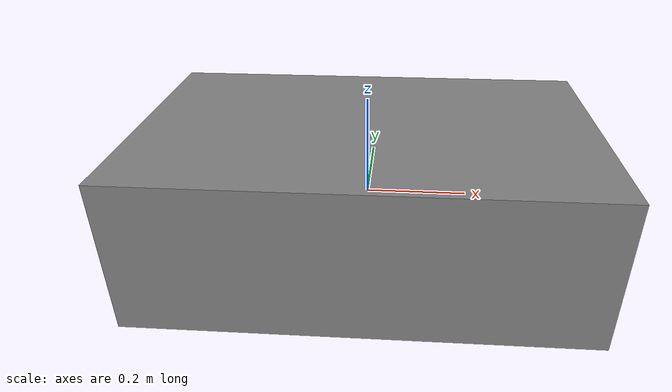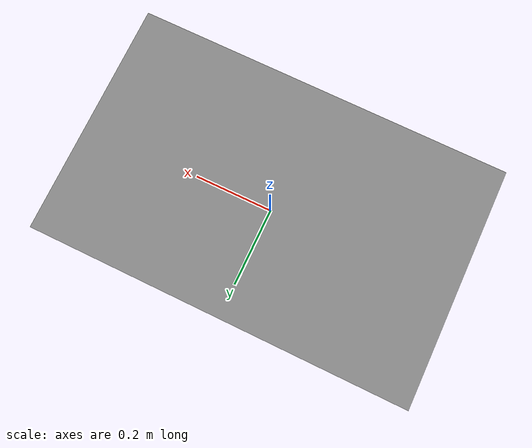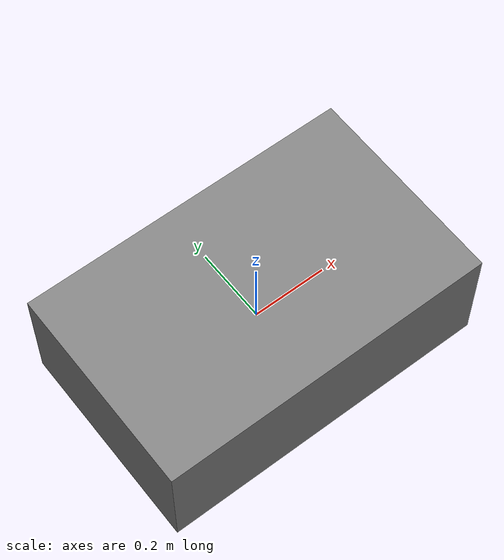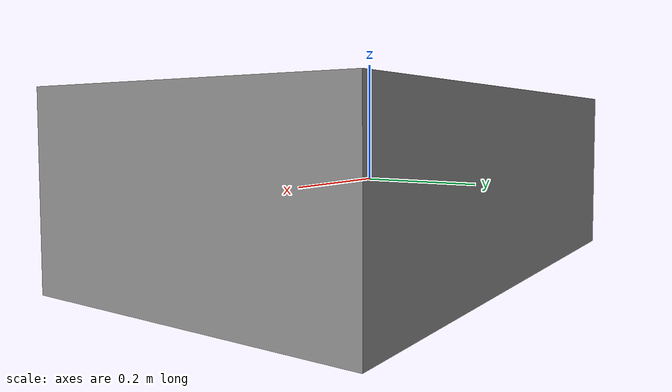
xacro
<?xml version="1.0"?>
<robot name="outdoor_robot" xmlns:xacro="http://www.ros.org/wiki/xacro">
<!-- WHEEL_BASE: TBD — measure after assembly and add wheel links -->
<!-- 6x wheel links needed: FL, FR, ML, MR, RL, RR -->
<!-- Rocker-bogie suspension means wheel z-positions vary with terrain -->

  <!-- Base dimensions — measure and update these -->
  <xacro:property name="base_length" value="0.8884"/>
  <xacro:property name="base_width" value="0.554"/>
  <xacro:property name="base_height" value="0.3"/>
  <xacro:property name="wheel_radius" value="0.05"/>
  <xacro:property name="wheel_width" value="0.04"/>

  <!-- Base link -->
  <link name="base_link">
    <visual>
      <geometry>
        <box size="${base_length} ${base_width} ${base_height}"/>
      </geometry>
      <material name="grey">
        <color rgba="0.5 0.5 0.5 1.0"/>
      </material>
    </visual>
    <collision>
      <geometry>
        <box size="${base_length} ${base_width} ${base_height}"/>
      </geometry>
    </collision>
    <inertial>
      <mass value="6.18"/>
      <inertia ixx="0.2044" ixy="0" ixz="0" iyy="0.4528" iyz="0" izz="0.5645"/>
    </inertial>
  </link>

  <!-- IMU link -->
  <link name="imu_link"/>
  <joint name="imu_joint" type="fixed">
    <parent link="base_link"/>
    <child link="imu_link"/>
    <origin xyz="0 0 0.05" rpy="0 0 0"/> <!--MEASURE: IMU POS ON CHASSIS-->
  </joint>

  <!-- GPS link -->
  <link name="gps_link"/>
  <joint name="gps_joint" type="fixed">
    <parent link="base_link"/>
    <child link="gps_link"/>
    <origin xyz="0 0 0.1" rpy="0 0 0"/> <!--MEASURE: GPS MAST HEIGHT-->
  </joint>

  <!-- Lidar link -->
  <link name="laser_frame"/>
  <joint name="laser_joint" type="fixed">
    <parent link="base_link"/>
    <child link="laser_frame"/>
    <origin xyz="0.2 0 0.1" rpy="0 0 0"/> <!--MEASURE: LIDAR MOUNT POS-->
  </joint>

</robot>
